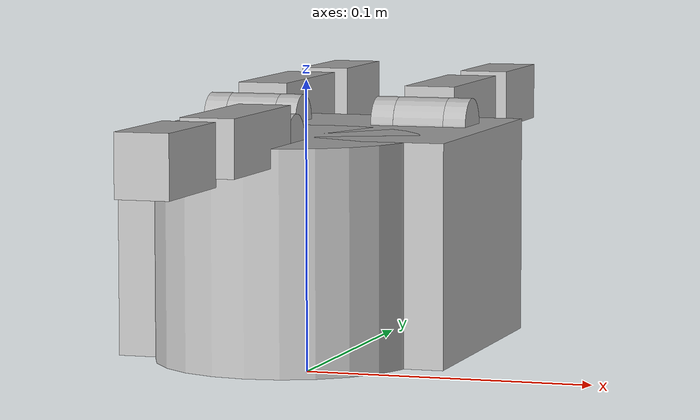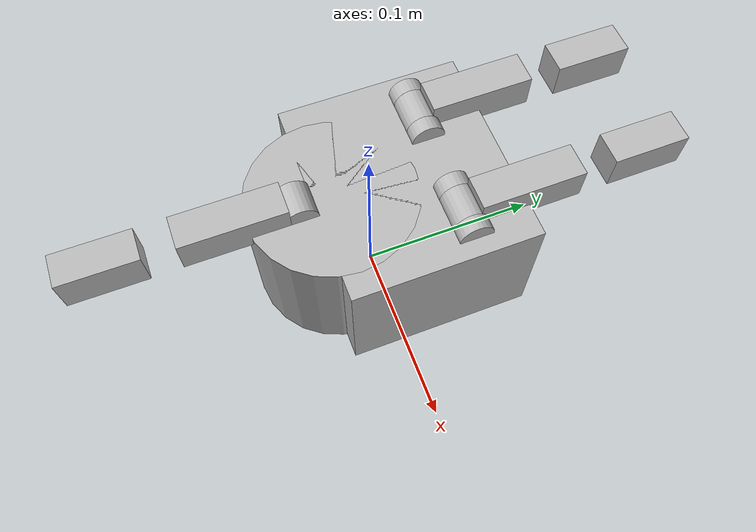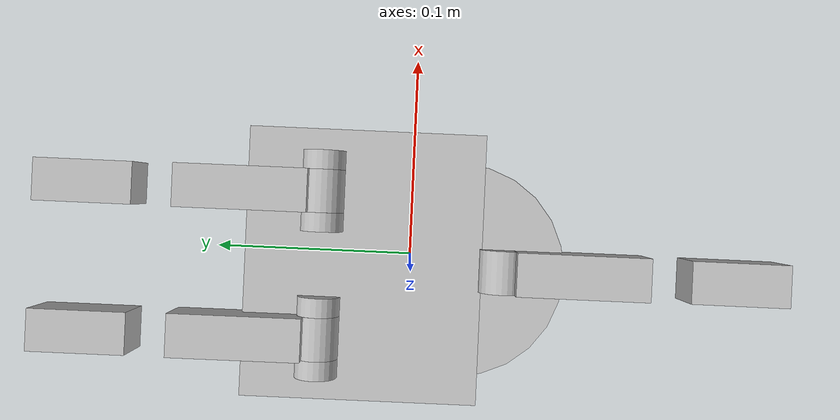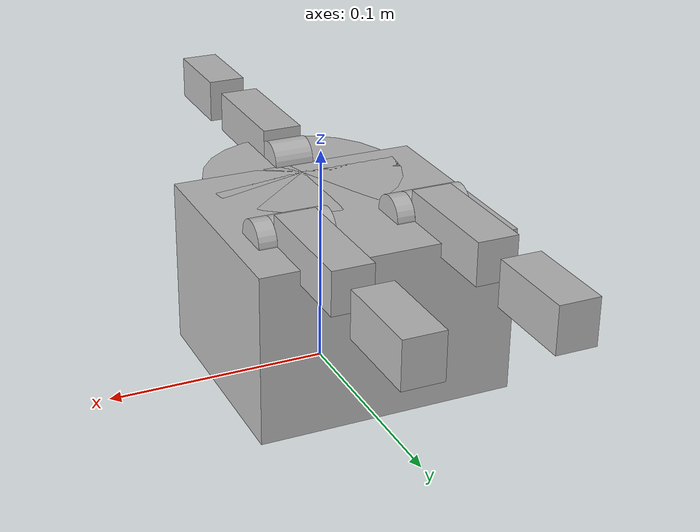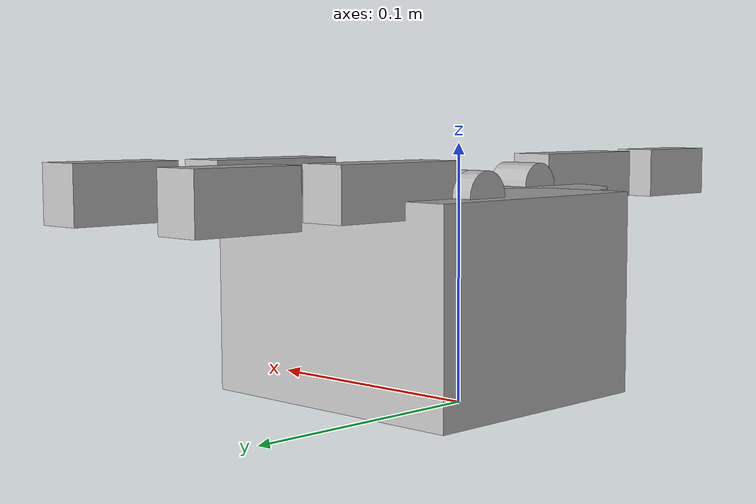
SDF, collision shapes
<?xml version="1.0" ?>
<sdf version="1.4">
  <model name="irobot_hand">
    <static>false</static>
    <link name="base_link">
      <inertial>
        <mass>0.2</mass>
        <inertia>
          <ixx>0.1000</ixx>
          <ixy>0</ixy>
          <ixz>0</ixz>
          <iyy>0.1000</iyy>
          <iyz>0</iyz>
          <izz>0.1000</izz>
        </inertia>
      </inertial>
      <collision name="collision1">
        <pose>0 0.02 0.045 0 0 0</pose>
        <geometry>
          <box>
            <size>0.114 0.1 0.075</size>
          </box>
        </geometry>
      </collision>
      <collision name="collision2">
        <pose>0 -0.02 0.045 0 0 0</pose>
        <geometry>
          <cylinder>
            <radius>0.0448</radius>
            <length>0.075</length>
          </cylinder>
        </geometry>
      </collision>
      <visual name="base_link_vis">
        <pose>0 -0.038000 -0.023000 0 0 0</pose>
        <geometry>
          <mesh>
            <uri>model://irobot_hand/meshes/palm.stl</uri>
          </mesh>
        </geometry>
      </visual>
    </link>
    <link name="finger0/base_rotation_link">
      <pose>0.030750 0.038000 0.069477 0 0 0</pose>
      <inertial>
        <mass>0.1</mass>
        <inertia>
          <ixx>0.1000</ixx>
          <ixy>0</ixy>
          <ixz>0</ixz>
          <iyy>0.1000</iyy>
          <iyz>0</iyz>
          <izz>0.1000</izz>
        </inertia>
      </inertial>
      <collision name="collision_1">
        <pose>0 0 -.0025 0 0 0</pose>
        <geometry>
          <cylinder>
            <length>0.0145</length>
            <radius>0.025</radius>
          </cylinder>
        </geometry>
      </collision>
      <collision name="collision_2">
        <pose>0 0 -.0104 0 0 0</pose>
        <geometry>
          <cylinder>
            <length>0.0145</length>
            <radius>0.0165</radius>
          </cylinder>
        </geometry>
      </collision>
      <collision name="collision_3">
        <pose>0 0 .0135 1.5707 0 1.5707</pose>
        <geometry>
          <cylinder>
            <length>0.02</length>
            <radius>0.002</radius>
          </cylinder>
        </geometry>
      </collision>
      <collision name="collision_4">
        <pose>0.013 0 .0135 1.5707 0 1.5707</pose>
        <geometry>
          <cylinder>
            <length>0.008</length>
            <radius>0.009</radius>
          </cylinder>
        </geometry>
      </collision>
      <collision name="collision_5">
        <pose>-0.013 0 .0135 1.5707 0 1.5707</pose>
        <geometry>
          <cylinder>
            <length>0.008</length>
            <radius>0.009</radius>
          </cylinder>
        </geometry>
      </collision>
      <visual name="finger0/base_rotation_link_vis">
        <pose>0 0 0 1.57 0 0</pose>
        <geometry>
          <mesh>
            <uri>model://irobot_hand/meshes/finger_base.stl</uri>
          </mesh>
        </geometry>
      </visual>
    </link>
    <link name="finger0/proximal_link">
      <pose>0.030750 0.038000 0.082977 1.57 0 -3.140000</pose>
      <inertial>
        <mass>0.1</mass>
        <inertia>
          <ixx>0.1000</ixx>
          <ixy>0</ixy>
          <ixz>0</ixz>
          <iyy>0.1000</iyy>
          <iyz>0</iyz>
          <izz>0.1000</izz>
        </inertia>
      </inertial>
      <collision name="collision1">
        <pose>0 0.0028 0.033 0 0 0</pose>
        <geometry>
          <box>
            <size>0.018 0.019 0.055</size>
          </box>
        </geometry>
      </collision>
      <collision name="collision2">
        <pose>0 0 0 0 1.5707 0</pose>
        <geometry>
          <cylinder>
            <radius>0.009</radius>
            <length>0.018</length>
          </cylinder>
        </geometry>
      </collision>
      <visual name="visual">
        <pose>0 0 0 1.57 -1.57 0</pose>
        <geometry>
          <mesh>
            <uri>model://irobot_hand/meshes/finger_proximal.stl</uri>
          </mesh>
        </geometry>
      </visual>
    </link>
    <link name='finger0/distal_link'>
      <pose>0.030626 0.116000 0.083039 1.57 0 -3.140000</pose>
      <inertial>
        <mass>0.1</mass>
        <inertia>
          <ixx>0.1000</ixx>
          <ixy>0</ixy>
          <ixz>0</ixz>
          <iyy>0.1000</iyy>
          <iyz>0</iyz>
          <izz>0.1000</izz>
        </inertia>
      </inertial>
      <collision name='collision'>
        <pose>0 0.0025 0.019 3.141590 0.001593 3.141590</pose>
        <geometry>
          <box>
            <size>0.0175 0.02023 0.04043</size>
          </box>
        </geometry>
      </collision>
      <visual name='visual'>
        <pose>0 0 0 3.141590 0.001593 3.141590</pose>
        <geometry>
          <mesh>
            <uri>model://irobot_hand/meshes/finger_distal.stl</uri>
          </mesh>
        </geometry>
      </visual>
    </link>

    <link name="finger1/base_rotation_link">
      <pose>-0.030750 0.038000 0.069477 0 0 0</pose>
      <inertial>
        <mass>0.1</mass>
        <inertia>
          <ixx>0.1000</ixx>
          <ixy>0</ixy>
          <ixz>0</ixz>
          <iyy>0.1000</iyy>
          <iyz>0</iyz>
          <izz>0.1000</izz>
        </inertia>
      </inertial>
      <collision name="collision_1">
        <pose>0 0 -.0025 0 0 0</pose>
        <geometry>
          <cylinder>
            <length>0.0145</length>
            <radius>0.025</radius>
          </cylinder>
        </geometry>
      </collision>
      <collision name="collision_2">
        <pose>0 0 -.0104 0 0 0</pose>
        <geometry>
          <cylinder>
            <length>0.0145</length>
            <radius>0.0165</radius>
          </cylinder>
        </geometry>
      </collision>
      <collision name="collision_3">
        <pose>0 0 .0135 1.5707 0 1.5707</pose>
        <geometry>
          <cylinder>
            <length>0.02</length>
            <radius>0.002</radius>
          </cylinder>
        </geometry>
      </collision>
      <collision name="collision_4">
        <pose>0.013 0 .0135 1.5707 0 1.5707</pose>
        <geometry>
          <cylinder>
            <length>0.008</length>
            <radius>0.009</radius>
          </cylinder>
        </geometry>
      </collision>
      <collision name="collision_5">
        <pose>-0.013 0 .0135 1.5707 0 1.5707</pose>
        <geometry>
          <cylinder>
            <length>0.008</length>
            <radius>0.009</radius>
          </cylinder>
        </geometry>
      </collision>
      <visual name="visual">
        <pose>0 0 0 1.57 0 0</pose>
        <geometry>
          <mesh>
            <uri>model://irobot_hand/meshes/finger_base.stl</uri>
          </mesh>
        </geometry>
      </visual>
    </link>
    <link name="finger1/proximal_link">
      <pose>-0.030750 0.038000 0.082977 1.57 0 -3.140000</pose>
      <inertial>
        <mass>0.1</mass>
        <inertia>
          <ixx>0.1000</ixx>
          <ixy>0</ixy>
          <ixz>0</ixz>
          <iyy>0.1000</iyy>
          <iyz>0</iyz>
          <izz>0.1000</izz>
        </inertia>
      </inertial>
      <collision name="collision1">
        <pose>0 0.0028 0.033 0 0 0</pose>
        <geometry>
          <box>
            <size>0.018 0.019 0.055</size>
          </box>
        </geometry>
      </collision>
      <collision name="collision2">
        <pose>0 0 0 0 1.5707 0</pose>
        <geometry>
          <cylinder>
            <radius>0.009</radius>
            <length>0.018</length>
          </cylinder>
        </geometry>
      </collision>
      <visual name="visual">
        <pose>0 0 0 1.57 -1.57 -0</pose>
        <geometry>
          <mesh>
            <uri>model://irobot_hand/meshes/finger_proximal.stl</uri>
          </mesh>
        </geometry>
      </visual>
    </link>
    <link name="finger1/distal_link">
      <pose>-0.030874 0.116000 0.083039 1.57 0 -3.140000</pose>
      <inertial>
        <mass>0.1</mass>
        <inertia>
          <ixx>0.1000</ixx>
          <ixy>0</ixy>
          <ixz>0</ixz>
          <iyy>0.1000</iyy>
          <iyz>0</iyz>
          <izz>0.1000</izz>
        </inertia>
      </inertial>
      <collision name="collision">
        <pose>0 0.0025 0.019 3.141590 0.001593 3.141590</pose>
        <geometry>
          <box>
            <size>0.0175 0.02023 0.04043</size>
          </box>
        </geometry>
      </collision>
      <visual name="visual">
        <pose>0 0 0 3.141590 0.001593 3.141590</pose>
        <geometry>
          <mesh>
            <uri>model://irobot_hand/meshes/finger_distal.stl</uri>
          </mesh>
        </geometry>
      </visual>
    </link>
    <link name="finger2/proximal_link">
      <pose>0 -0.038000 0.082755 1.57 0 0</pose>
      <inertial>
        <mass>0.1</mass>
        <inertia>
          <ixx>0.1000</ixx>
          <ixy>0</ixy>
          <ixz>0</ixz>
          <iyy>0.1000</iyy>
          <iyz>0</iyz>
          <izz>0.1000</izz>
        </inertia>
      </inertial>
      <collision name="collision1">
        <pose>0 0.0028 0.033 0 0 0</pose>
        <geometry>
          <box>
            <size>0.018 0.019 0.055</size>
          </box>
        </geometry>
      </collision>
      <collision name="collision2">
        <pose>0 0 0 0 1.5707 0</pose>
        <geometry>
          <cylinder>
            <radius>0.009</radius>
            <length>0.018</length>
          </cylinder>
        </geometry>
      </collision>
      <visual name="visual">
        <pose>0 0 0 1.57 -1.57 -0</pose>
        <geometry>
          <mesh>
            <uri>model://irobot_hand/meshes/finger_proximal.stl</uri>
          </mesh>
        </geometry>
      </visual>
    </link>
    <link name="finger2/distal_link">
      <pose>0 -0.116000 0.082817 1.57 0 0</pose>
      <inertial>
        <mass>0.1</mass>
        <inertia>
          <ixx>0.1000</ixx>
          <ixy>0</ixy>
          <ixz>0</ixz>
          <iyy>0.1000</iyy>
          <iyz>0</iyz>
          <izz>0.1000</izz>
        </inertia>
      </inertial>
      <collision name="collision">
        <pose>0 0.0025 0.019 3.141590 0.001593 3.141590</pose>
        <geometry>
          <box>
            <size>0.0175 0.02023 0.04043</size>
          </box>
        </geometry>
      </collision>
      <visual name="visual">
        <pose>0 0 0 3.141590 0.001593 3.141590</pose>
        <geometry>
          <mesh>
            <uri>model://irobot_hand/meshes/finger_distal.stl</uri>
          </mesh>
        </geometry>
      </visual>
    </link>

    <joint name="finger0/joint_base_rotation" type="revolute">
      <child>finger0/base_rotation_link</child>
      <parent>base_link</parent>
      <axis>
        <xyz>0 0 -1</xyz>
        <limit>
          <lower>0</lower>
          <upper>1.57</upper>
        </limit>
        <dynamics />
        <use_parent_model_frame>true</use_parent_model_frame>
      </axis>
    </joint>
    <joint name="finger0/joint_base" type="revolute">
      <child>finger0/proximal_link</child>
      <parent>finger0/base_rotation_link</parent>
      <axis>
        <xyz>0.999999 0.001593 -0</xyz>
        <limit>
          <lower>0</lower>
          <upper>1.57</upper>
        </limit>
        <dynamics />
        <use_parent_model_frame>true</use_parent_model_frame>
      </axis>
    </joint>
    <joint name='finger0/proximal_to_distal' type='revolute'>
      <child>finger0/distal_link</child>
      <parent>finger0/proximal_link</parent>
      <axis>
        <xyz>0.999998 0.0001593 0</xyz>
        <limit>
          <lower>0</lower>
          <upper>1.57</upper>
        </limit>
        <dynamics/>
      </axis>
    </joint>

    <joint name="finger1/joint_base_rotation" type="revolute">
      <child>finger1/base_rotation_link</child>
      <parent>base_link</parent>
      <axis>
        <xyz>0 0 1</xyz>
        <limit>
          <lower>0</lower>
          <upper>1.57</upper>
        </limit>
        <dynamics />
        <use_parent_model_frame>true</use_parent_model_frame>
      </axis>
    </joint>
    <joint name="finger1/joint_base" type="revolute">
      <child>finger1/proximal_link</child>
      <parent>finger1/base_rotation_link</parent>
      <axis>
        <xyz>0.999999 0.001593 -0</xyz>
        <limit>
          <lower>0</lower>
          <upper>1.57</upper>
        </limit>
        <dynamics />
        <use_parent_model_frame>true</use_parent_model_frame>
      </axis>
    </joint>
    <joint name='finger1/proximal_to_distal' type='revolute'>
      <child>finger1/distal_link</child>
      <parent>finger1/proximal_link</parent>
      <axis>
        <xyz>0.999999 0.001593 -0</xyz>
        <limit>
          <lower>0</lower>
          <upper>1.57</upper>
        </limit>
        <dynamics/>
      </axis>
    </joint>

    <joint name="finger2/joint_base" type="revolute">
      <child>finger2/proximal_link</child>
      <parent>base_link</parent>
      <axis>
        <xyz>-1 0 0</xyz>
        <limit>
          <lower>0</lower>
          <upper>1.57</upper>
        </limit>
        <dynamics />
        <use_parent_model_frame>true</use_parent_model_frame>
      </axis>
    </joint>

    <joint name='finger2/proximal_to_distal' type='revolute'>
      <child>finger2/distal_link</child>
      <parent>finger2/proximal_link</parent>
      <axis>
        <xyz>-1 0 0.000796</xyz>
        <limit>
          <lower>0</lower>
          <upper>1.57</upper>
        </limit>
        <dynamics/>
      </axis>
    </joint>

  </model>
</sdf>
